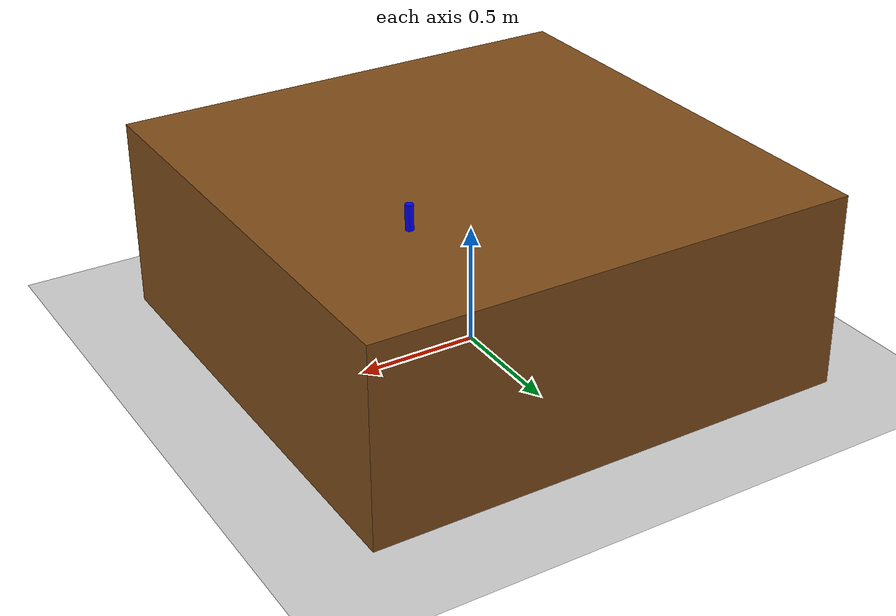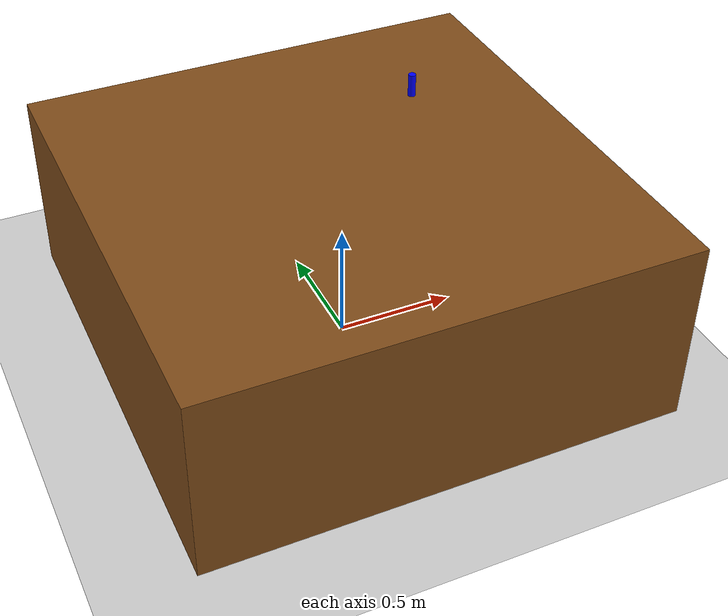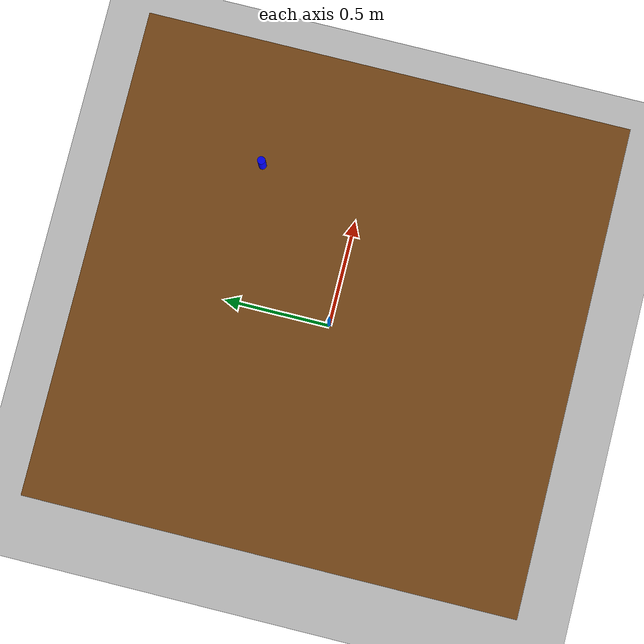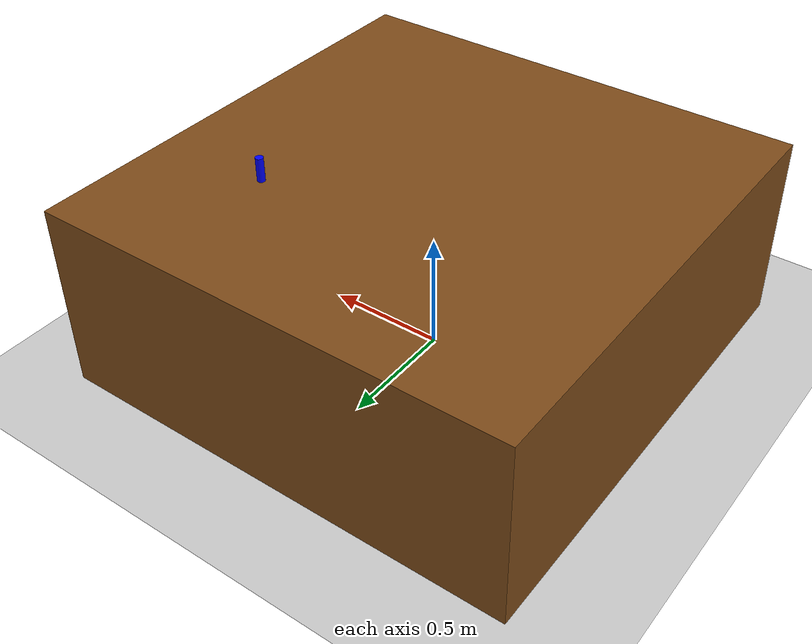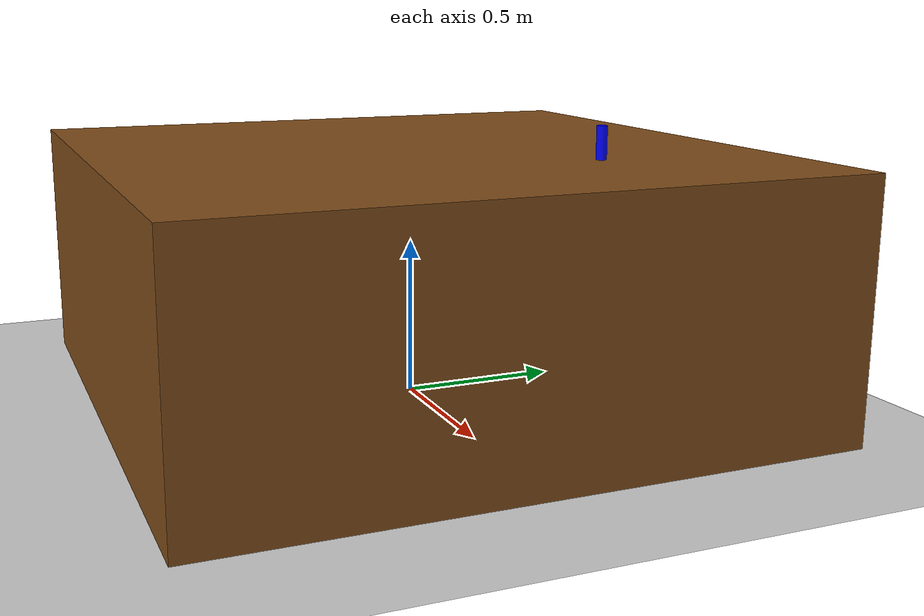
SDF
<?xml version="1.0" ?>
<sdf version="1.8">
    <world name="robot_world">
        <!-- Physics -->
        <plugin filename="gz-sim-physics-system" name="gz::sim::systems::Physics"></plugin>
        <!-- Processes user commands, like translate and create -->
        <plugin filename="gz-sim-user-commands-system" name="gz::sim::systems::UserCommands"></plugin>
        <plugin filename="gz-sim-scene-broadcaster-system" name="gz::sim::systems::SceneBroadcaster"></plugin>
        <!-- light-->
        <light type="directional" name="sun">
            <cast_shadows>true</cast_shadows>
            <pose>0 0 10 0 0 0</pose>
            <diffuse>0.8 0.8 0.8 1</diffuse>
            <specular>0.2 0.2 0.2 1</specular>
            <attenuation>
                <range>1000</range>
                <constant>0.9</constant>
                <linear>0.01</linear>
                <quadratic>0.001</quadratic>
            </attenuation>
            <direction>-0.5 0.1 -0.9</direction>
        </light>
        <!--ground_plane-->
        <model name="ground_plane">
            <static>true</static>
            <link name="link">
                <collision name="collision">
                    <geometry>
                        <plane>
                            <normal>0 0 1</normal>
                            <size>100 100</size>
                        </plane>
                    </geometry>
                </collision>
                <visual name="visual">
                    <geometry>
                        <plane>
                            <normal>0 0 1</normal>
                            <size>100 100</size>
                        </plane>
                    </geometry>
                    <material>
                        <ambient>0.8 0.8 0.8 1</ambient>
                        <diffuse>0.8 0.8 0.8 1</diffuse>
                        <specular>0.8 0.8 0.8 1</specular>
                    </material>
                </visual>
            </link>
        </model>

        <!-- expanded table -->
        <model name="table">
            <static>true</static>
            <pose>0 0 0.4 0 0 0</pose>
            <link name="link">
                <collision name="collision">
                    <geometry>
                        <box>
                            <size>2.0 2.0 0.8</size>
                        </box>
                    </geometry>
                </collision>
                <visual name="visual">
                    <geometry>
                        <box>
                            <size>2.0 2.0 0.8</size>
                        </box>
                    </geometry>
                    <material>
                        <ambient>0.5 0.3 0.1 1</ambient>
                        <diffuse>0.5 0.3 0.1 1</diffuse>
                    </material>
                </visual>
            </link>
        </model>

        <model name="cylinder_object">
            <pose>0.5 0.4 0.855 0 0 0</pose>
            <link name="link">
                <inertial>
                    <mass>0.1</mass>
                    <inertia>
                        <ixx>0.0001</ixx><ixy>0</ixy><ixz>0</ixz>
                        <iyy>0.0001</iyy><iyz>0</iyz><izz>0.0001</izz>
                    </inertia>
                </inertial>
                <collision name="collision">
                    <geometry>
                        <cylinder><radius>0.016</radius><length>0.1</length></cylinder>
                    </geometry>
                </collision>
                <visual name="visual">
                    <geometry>
                        <cylinder><radius>0.016</radius><length>0.1</length></cylinder>
                    </geometry>
                    <material>
                        <ambient>0.0 0.0 1.0 1</ambient>
                        <diffuse>0.0 0.0 1.0 1</diffuse>
                    </material>
                </visual>
            </link>
        </model>
    </world>
</sdf>
